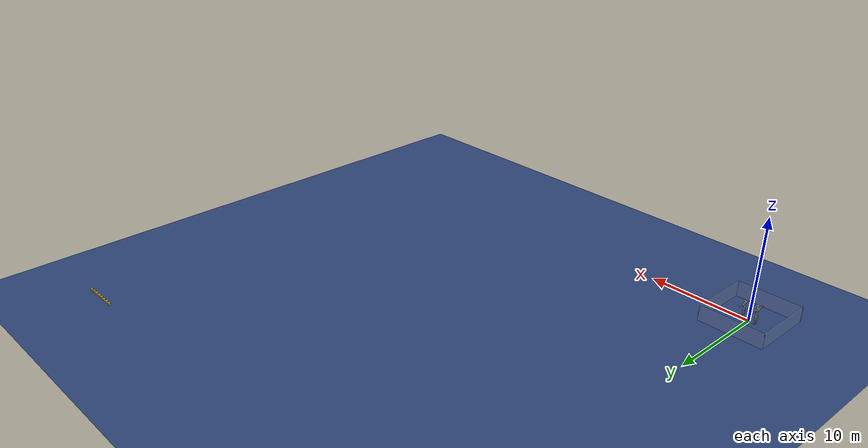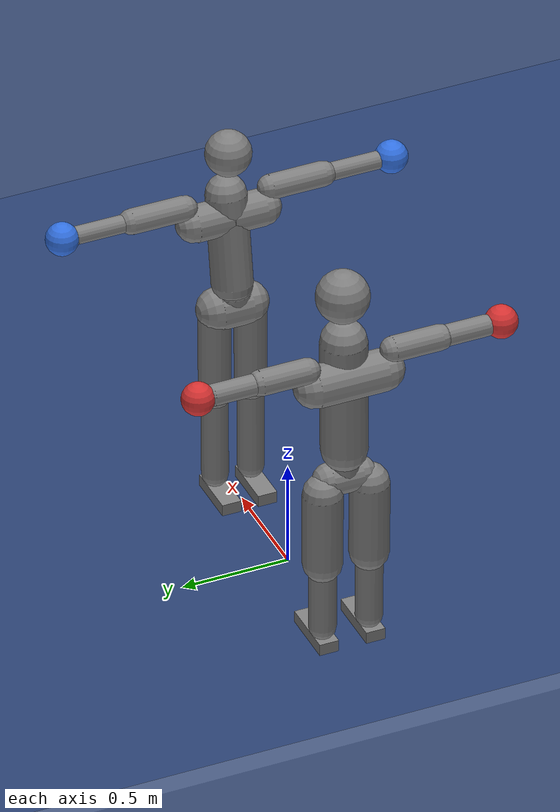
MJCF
<mujoco model="trump_vs_matt_spar">
  <compiler angle="degree" inertiafromgeom="true" autolimits="true"/>
  <option timestep="0.005" iterations="10" ls_iterations="10" integrator="implicitfast">
    <flag eulerdamp="disable"/>
  </option>
  <default>
    <geom contype="1" conaffinity="1" condim="3" friction="1.0 0.005 0.0001" density="1000" margin="0"/>
    <joint limited="true"/>
    <position ctrllimited="true"/>
  </default>
  <asset>
    <texture name="grid" type="2d" builtin="checker" rgb1=".18 .28 .48" rgb2=".14 .22 .40" width="300" height="300"/>
    <material name="grid" texture="grid" texrepeat="6 6" reflectance="0"/>
  </asset>
  <worldbody>
    <light pos="0 0 5" dir="0 0 -1" directional="true"/>
    <geom name="floor" type="plane" size="0 0 0.05" material="grid" friction="1.0 0.005 0.0001"/>
    <geom name="rope_n" type="box" pos="0.0000 3.1000 0.7500" size="3.1500 0.0500 0.7500" rgba="0.8 0.8 0.8 0.15"/>
    <geom name="rope_s" type="box" pos="0.0000 -3.1000 0.7500" size="3.1500 0.0500 0.7500" rgba="0.8 0.8 0.8 0.15"/>
    <geom name="rope_e" type="box" pos="3.1000 0.0000 0.7500" size="0.0500 3.1500 0.7500" rgba="0.8 0.8 0.8 0.15"/>
    <geom name="rope_w" type="box" pos="-3.1000 0.0000 0.7500" size="0.0500 3.1500 0.7500" rgba="0.8 0.8 0.8 0.15"/>
    <body name="a_pelvis" pos="-0.6000 0.0000 0.8500" quat="1.00000 0 0 0.00000">
      <freejoint name="a_root"/>
      <geom name="a_pelvis_geom" type="capsule" fromto="0.0000 -0.0700 0.0000 0.0000 0.0700 0.0000" size="0.0759" mass="9.1798" />
      <geom name="a_pelvis_up" type="capsule" fromto="0.0000 0.0000 0.0000 0.0000 0.0000 0.1100" size="0.0683" mass="6.1988" />
      <body name="a_torso" pos="0.0000 0.0000 0.1300">
        <joint name="a_abdomen_z" type="hinge" axis="0 0 1" range="-45 45" damping="0.5" armature="0.08" stiffness="0"/>
        <joint name="a_abdomen_y" type="hinge" axis="0 1 0" range="-60 30" damping="0.5" armature="0.08" stiffness="0"/>
        <joint name="a_abdomen_x" type="hinge" axis="1 0 0" range="-35 35" damping="0.5" armature="0.08" stiffness="0"/>
        <geom name="a_torso_geom" type="capsule" fromto="0.0000 0.0000 0.0200 0.0100 0.0000 0.5700" size="0.1054" mass="38.4465" />
        <geom name="a_chest_geom" type="capsule" fromto="-0.0480 -0.1600 0.4160 -0.0480 0.1600 0.4160" size="0.0949" mass="0.5"/>
        <geom name="a_head_geom" type="sphere" pos="0.0200 0.0000 0.8000" size="0.1200" mass="8.7723" />
        <body name="a_upper_arm_l" pos="-0.0600 0.2000 0.5200">
          <joint name="a_shoulder_x_l" type="hinge" axis="1 0 0" range="-170 30" damping="0.5" armature="0.03" stiffness="0"/>
          <joint name="a_shoulder_z_l" type="hinge" axis="0 0 1" range="-110 110" damping="0.5" armature="0.03" stiffness="0"/>
          <geom name="a_upper_arm_l_geom" type="capsule" fromto="0.0000 0.0000 0.0000 0.0000 0.2200 0.0000" size="0.0580" mass="3.0324" />
          <body name="a_forearm_l" pos="0.0000 0.2200 0.0000">
            <joint name="a_elbow_l" type="hinge" axis="0 0 1" range="-150 0" damping="0.5" armature="0.02" stiffness="0"/>
            <geom name="a_forearm_l_geom" type="capsule" fromto="0.0000 0.0000 0.0000 0.0000 0.2202 0.0000" size="0.0480" mass="1.7328" />
            <geom name="a_glove_l" type="sphere" pos="0.0000 0.2877 0.0000" size="0.0750" mass="0.9328" rgba="0.85 0.2 0.2 1"/>
          </body>
        </body>
        <body name="a_upper_arm_r" pos="-0.0600 -0.2000 0.5200">
          <joint name="a_shoulder_x_r" type="hinge" axis="1 0 0" range="-30 170" damping="0.5" armature="0.03" stiffness="0"/>
          <joint name="a_shoulder_z_r" type="hinge" axis="0 0 1" range="-110 110" damping="0.5" armature="0.03" stiffness="0"/>
          <geom name="a_upper_arm_r_geom" type="capsule" fromto="0.0000 0.0000 0.0000 0.0000 -0.2200 0.0000" size="0.0580" mass="3.0324" />
          <body name="a_forearm_r" pos="0.0000 -0.2200 0.0000">
            <joint name="a_elbow_r" type="hinge" axis="0 0 1" range="0 150" damping="0.5" armature="0.02" stiffness="0"/>
            <geom name="a_forearm_r_geom" type="capsule" fromto="0.0000 0.0000 0.0000 0.0000 -0.2202 0.0000" size="0.0480" mass="1.7328" />
            <geom name="a_glove_r" type="sphere" pos="0.0000 -0.2877 0.0000" size="0.0750" mass="0.9328" rgba="0.85 0.2 0.2 1"/>
          </body>
        </body>
      </body>
      <body name="a_thigh_l" pos="-0.0200 0.1100 -0.0500">
        <joint name="a_hip_x_l" type="hinge" axis="1 0 0" range="-40 40" damping="0.5" armature="0.1" stiffness="0"/>
        <joint name="a_hip_z_l" type="hinge" axis="0 0 1" range="-35 35" damping="0.5" armature="0.1" stiffness="0"/>
        <joint name="a_hip_y_l" type="hinge" axis="0 1 0" range="-120 30" damping="0.5" armature="0.1" stiffness="0"/>
        <geom name="a_thigh_l_geom" type="capsule" fromto="0.0000 0.0000 0.0000 0.0000 0.0000 -0.3618" size="0.0900" mass="10.8300" />
        <body name="a_shin_l" pos="0.0000 0.0000 -0.3618">
          <joint name="a_knee_l" type="hinge" axis="0 1 0" range="0 150" damping="0.5" armature="0.1" stiffness="0"/>
          <geom name="a_shin_l_geom" type="capsule" fromto="0.0000 0.0000 0.0000 0.0000 0.0000 -0.3404" size="0.0620" mass="5.0359" />
          <body name="a_foot_l" pos="0.0000 0.0000 -0.3404">
            <joint name="a_ankle_y_l" type="hinge" axis="0 1 0" range="-20 50" damping="0.5" armature="0.03" stiffness="0"/>
            <joint name="a_ankle_x_l" type="hinge" axis="1 0 0" range="-25 25" damping="0.5" armature="0.03" stiffness="0"/>
            <geom name="a_foot_l_geom" type="box" pos="0.0624 0.0000 -0.0720" size="0.1358 0.0450 0.0280" mass="1.5704" friction="1.0 0.005 0.0001"/>
            <site name="a_foot_l_site" pos="0.0624 0.0000 -0.0720" size="0.01"/>
          </body>
        </body>
      </body>
      <body name="a_thigh_r" pos="-0.0200 -0.1100 -0.0500">
        <joint name="a_hip_x_r" type="hinge" axis="1 0 0" range="-40 40" damping="0.5" armature="0.1" stiffness="0"/>
        <joint name="a_hip_z_r" type="hinge" axis="0 0 1" range="-35 35" damping="0.5" armature="0.1" stiffness="0"/>
        <joint name="a_hip_y_r" type="hinge" axis="0 1 0" range="-120 30" damping="0.5" armature="0.1" stiffness="0"/>
        <geom name="a_thigh_r_geom" type="capsule" fromto="0.0000 0.0000 0.0000 0.0000 0.0000 -0.3618" size="0.0900" mass="10.8300" />
        <body name="a_shin_r" pos="0.0000 0.0000 -0.3618">
          <joint name="a_knee_r" type="hinge" axis="0 1 0" range="0 150" damping="0.5" armature="0.1" stiffness="0"/>
          <geom name="a_shin_r_geom" type="capsule" fromto="0.0000 0.0000 0.0000 0.0000 0.0000 -0.3404" size="0.0620" mass="5.0359" />
          <body name="a_foot_r" pos="0.0000 0.0000 -0.3404">
            <joint name="a_ankle_y_r" type="hinge" axis="0 1 0" range="-20 50" damping="0.5" armature="0.03" stiffness="0"/>
            <joint name="a_ankle_x_r" type="hinge" axis="1 0 0" range="-25 25" damping="0.5" armature="0.03" stiffness="0"/>
            <geom name="a_foot_r_geom" type="box" pos="0.0624 0.0000 -0.0720" size="0.1358 0.0450 0.0280" mass="1.5704" friction="1.0 0.005 0.0001"/>
            <site name="a_foot_r_site" pos="0.0624 0.0000 -0.0720" size="0.01"/>
          </body>
        </body>
      </body>
    </body>
    <body name="b_pelvis" pos="0.6000 0.0000 0.9733" quat="0.00000 0 0 1.00000">
      <freejoint name="b_root"/>
      <geom name="b_pelvis_geom" type="capsule" fromto="0.0000 -0.0700 0.0000 0.0000 0.0700 0.0000" size="0.0976" mass="7.5566" />
      <geom name="b_pelvis_up" type="capsule" fromto="0.0000 0.0000 0.0000 -0.0008 0.0000 0.0758" size="0.0878" mass="4.3714" />
      <body name="b_torso" pos="-0.0008 0.0000 0.0958">
        <joint name="b_abdomen_z" type="hinge" axis="0 0 1" range="-45 45" damping="0.5" armature="0.08" stiffness="0"/>
        <joint name="b_abdomen_y" type="hinge" axis="0 1 0" range="-60 30" damping="0.5" armature="0.08" stiffness="0"/>
        <joint name="b_abdomen_x" type="hinge" axis="1 0 0" range="-35 35" damping="0.5" armature="0.08" stiffness="0"/>
        <geom name="b_torso_geom" type="capsule" fromto="0.0000 0.0000 0.0200 -0.0653 -0.0000 0.4511" size="0.0937" mass="29.8200" />
        <geom name="b_chest_geom" type="capsule" fromto="-0.0402 -0.1614 0.3530 -0.0402 0.1614 0.3530" size="0.0843" mass="0.5"/>
        <geom name="b_head_geom" type="sphere" pos="-0.0385 -0.0000 0.6830" size="0.1049" mass="6.8040" />
        <body name="b_upper_arm_l" pos="-0.0503 0.2018 0.4412">
          <joint name="b_shoulder_x_l" type="hinge" axis="1 0 0" range="-170 30" damping="0.5" armature="0.03" stiffness="0"/>
          <joint name="b_shoulder_z_l" type="hinge" axis="0 0 1" range="-110 110" damping="0.5" armature="0.03" stiffness="0"/>
          <geom name="b_upper_arm_l_geom" type="capsule" fromto="0.0000 0.0000 0.0000 0.0000 0.2524 0.0000" size="0.0571" mass="2.3520" />
          <body name="b_forearm_l" pos="0.0000 0.2524 0.0000">
            <joint name="b_elbow_l" type="hinge" axis="0 0 1" range="-150 0" damping="0.5" armature="0.02" stiffness="0"/>
            <geom name="b_forearm_l_geom" type="capsule" fromto="0.0000 0.0000 0.0000 0.0000 0.2567 0.0000" size="0.0408" mass="1.3440" />
            <geom name="b_glove_l" type="sphere" pos="0.0000 0.3242 0.0000" size="0.0750" mass="0.7870" rgba="0.2 0.45 0.9 1"/>
          </body>
        </body>
        <body name="b_upper_arm_r" pos="-0.0503 -0.2018 0.4412">
          <joint name="b_shoulder_x_r" type="hinge" axis="1 0 0" range="-30 170" damping="0.5" armature="0.03" stiffness="0"/>
          <joint name="b_shoulder_z_r" type="hinge" axis="0 0 1" range="-110 110" damping="0.5" armature="0.03" stiffness="0"/>
          <geom name="b_upper_arm_r_geom" type="capsule" fromto="0.0000 0.0000 0.0000 0.0000 -0.2524 0.0000" size="0.0571" mass="2.3520" />
          <body name="b_forearm_r" pos="0.0000 -0.2524 0.0000">
            <joint name="b_elbow_r" type="hinge" axis="0 0 1" range="0 150" damping="0.5" armature="0.02" stiffness="0"/>
            <geom name="b_forearm_r_geom" type="capsule" fromto="0.0000 0.0000 0.0000 0.0000 -0.2567 0.0000" size="0.0408" mass="1.3440" />
            <geom name="b_glove_r" type="sphere" pos="0.0000 -0.3242 0.0000" size="0.0750" mass="0.7870" rgba="0.2 0.45 0.9 1"/>
          </body>
        </body>
      </body>
      <body name="b_thigh_l" pos="0.0008 0.0857 -0.0302">
        <joint name="b_hip_x_l" type="hinge" axis="1 0 0" range="-40 40" damping="0.5" armature="0.1" stiffness="0"/>
        <joint name="b_hip_z_l" type="hinge" axis="0 0 1" range="-35 35" damping="0.5" armature="0.1" stiffness="0"/>
        <joint name="b_hip_y_l" type="hinge" axis="0 1 0" range="-120 30" damping="0.5" armature="0.1" stiffness="0"/>
        <geom name="b_thigh_l_geom" type="capsule" fromto="0.0000 0.0000 0.0000 0.0000 0.0000 -0.4154" size="0.0737" mass="8.4000" />
        <body name="b_shin_l" pos="0.0000 0.0000 -0.4154">
          <joint name="b_knee_l" type="hinge" axis="0 1 0" range="0 150" damping="0.5" armature="0.1" stiffness="0"/>
          <geom name="b_shin_l_geom" type="capsule" fromto="0.0000 0.0000 0.0000 0.0000 0.0000 -0.4309" size="0.0608" mass="3.9060" />
          <body name="b_foot_l" pos="0.0000 0.0000 -0.4309">
            <joint name="b_ankle_y_l" type="hinge" axis="0 1 0" range="-20 50" damping="0.5" armature="0.03" stiffness="0"/>
            <joint name="b_ankle_x_l" type="hinge" axis="1 0 0" range="-25 25" damping="0.5" armature="0.03" stiffness="0"/>
            <geom name="b_foot_l_geom" type="box" pos="0.0581 0.0000 -0.0700" size="0.1262 0.0450 0.0280" mass="1.2180" friction="1.0 0.005 0.0001"/>
            <site name="b_foot_l_site" pos="0.0581 0.0000 -0.0700" size="0.01"/>
          </body>
        </body>
      </body>
      <body name="b_thigh_r" pos="0.0008 -0.0857 -0.0302">
        <joint name="b_hip_x_r" type="hinge" axis="1 0 0" range="-40 40" damping="0.5" armature="0.1" stiffness="0"/>
        <joint name="b_hip_z_r" type="hinge" axis="0 0 1" range="-35 35" damping="0.5" armature="0.1" stiffness="0"/>
        <joint name="b_hip_y_r" type="hinge" axis="0 1 0" range="-120 30" damping="0.5" armature="0.1" stiffness="0"/>
        <geom name="b_thigh_r_geom" type="capsule" fromto="0.0000 0.0000 0.0000 0.0000 0.0000 -0.4154" size="0.0737" mass="8.4000" />
        <body name="b_shin_r" pos="0.0000 0.0000 -0.4154">
          <joint name="b_knee_r" type="hinge" axis="0 1 0" range="0 150" damping="0.5" armature="0.1" stiffness="0"/>
          <geom name="b_shin_r_geom" type="capsule" fromto="0.0000 0.0000 0.0000 0.0000 0.0000 -0.4309" size="0.0608" mass="3.9060" />
          <body name="b_foot_r" pos="0.0000 0.0000 -0.4309">
            <joint name="b_ankle_y_r" type="hinge" axis="0 1 0" range="-20 50" damping="0.5" armature="0.03" stiffness="0"/>
            <joint name="b_ankle_x_r" type="hinge" axis="1 0 0" range="-25 25" damping="0.5" armature="0.03" stiffness="0"/>
            <geom name="b_foot_r_geom" type="box" pos="0.0581 0.0000 -0.0700" size="0.1262 0.0450 0.0280" mass="1.2180" friction="1.0 0.005 0.0001"/>
            <site name="b_foot_r_site" pos="0.0581 0.0000 -0.0700" size="0.01"/>
          </body>
        </body>
      </body>
    </body>
    <body name="cube_0" pos="40.0000 40.0000 0.3000"><freejoint name="cube_0"/><geom name="cube_0_geom" type="box" size="0.1 0.1 0.1" mass="1.0" rgba="0.9 0.7 0.2 1"/></body>
    <body name="cube_1" pos="40.5000 40.0000 0.3000"><freejoint name="cube_1"/><geom name="cube_1_geom" type="box" size="0.1 0.1 0.1" mass="1.0" rgba="0.9 0.7 0.2 1"/></body>
    <body name="cube_2" pos="41.0000 40.0000 0.3000"><freejoint name="cube_2"/><geom name="cube_2_geom" type="box" size="0.1 0.1 0.1" mass="1.0" rgba="0.9 0.7 0.2 1"/></body>
    <body name="cube_3" pos="41.5000 40.0000 0.3000"><freejoint name="cube_3"/><geom name="cube_3_geom" type="box" size="0.1 0.1 0.1" mass="1.0" rgba="0.9 0.7 0.2 1"/></body>
    <body name="cube_4" pos="42.0000 40.0000 0.3000"><freejoint name="cube_4"/><geom name="cube_4_geom" type="box" size="0.1 0.1 0.1" mass="1.0" rgba="0.9 0.7 0.2 1"/></body>
    <body name="cube_5" pos="42.5000 40.0000 0.3000"><freejoint name="cube_5"/><geom name="cube_5_geom" type="box" size="0.1 0.1 0.1" mass="1.0" rgba="0.9 0.7 0.2 1"/></body>
    <body name="cube_6" pos="43.0000 40.0000 0.3000"><freejoint name="cube_6"/><geom name="cube_6_geom" type="box" size="0.1 0.1 0.1" mass="1.0" rgba="0.9 0.7 0.2 1"/></body>
    <body name="cube_7" pos="43.5000 40.0000 0.3000"><freejoint name="cube_7"/><geom name="cube_7_geom" type="box" size="0.1 0.1 0.1" mass="1.0" rgba="0.9 0.7 0.2 1"/></body>
  </worldbody>
  <contact>
    <exclude body1="a_pelvis" body2="a_torso"/>
    <exclude body1="a_pelvis" body2="a_thigh_l"/>
    <exclude body1="a_thigh_l" body2="a_shin_l"/>
    <exclude body1="a_shin_l" body2="a_foot_l"/>
    <exclude body1="a_torso" body2="a_upper_arm_l"/>
    <exclude body1="a_upper_arm_l" body2="a_forearm_l"/>
    <exclude body1="a_pelvis" body2="a_thigh_r"/>
    <exclude body1="a_thigh_r" body2="a_shin_r"/>
    <exclude body1="a_shin_r" body2="a_foot_r"/>
    <exclude body1="a_torso" body2="a_upper_arm_r"/>
    <exclude body1="a_upper_arm_r" body2="a_forearm_r"/>
    <exclude body1="b_pelvis" body2="b_torso"/>
    <exclude body1="b_pelvis" body2="b_thigh_l"/>
    <exclude body1="b_thigh_l" body2="b_shin_l"/>
    <exclude body1="b_shin_l" body2="b_foot_l"/>
    <exclude body1="b_torso" body2="b_upper_arm_l"/>
    <exclude body1="b_upper_arm_l" body2="b_forearm_l"/>
    <exclude body1="b_pelvis" body2="b_thigh_r"/>
    <exclude body1="b_thigh_r" body2="b_shin_r"/>
    <exclude body1="b_shin_r" body2="b_foot_r"/>
    <exclude body1="b_torso" body2="b_upper_arm_r"/>
    <exclude body1="b_upper_arm_r" body2="b_forearm_r"/>
  </contact>
  <actuator>
    <position name="a_abdomen_z" joint="a_abdomen_z" kp="495.9" kv="23.142" forcerange="-187.34 187.34" ctrlrange="-0.7854 0.7854"/>
    <position name="a_abdomen_y" joint="a_abdomen_y" kp="495.9" kv="23.142" forcerange="-187.34 187.34" ctrlrange="-1.0472 0.5236"/>
    <position name="a_abdomen_x" joint="a_abdomen_x" kp="495.9" kv="23.142" forcerange="-187.34 187.34" ctrlrange="-0.6109 0.6109"/>
    <position name="a_shoulder_x_l" joint="a_shoulder_x_l" kp="176.32" kv="8.816" forcerange="-110.2 110.2" ctrlrange="-2.9671 0.5236"/>
    <position name="a_shoulder_z_l" joint="a_shoulder_z_l" kp="176.32" kv="8.816" forcerange="-110.2 110.2" ctrlrange="-1.9199 1.9199"/>
    <position name="a_elbow_l" joint="a_elbow_l" kp="121.22" kv="6.061" forcerange="-77.14 77.14" ctrlrange="-2.6180 0.0000"/>
    <position name="a_shoulder_x_r" joint="a_shoulder_x_r" kp="176.32" kv="8.816" forcerange="-110.2 110.2" ctrlrange="-0.5236 2.9671"/>
    <position name="a_shoulder_z_r" joint="a_shoulder_z_r" kp="176.32" kv="8.816" forcerange="-110.2 110.2" ctrlrange="-1.9199 1.9199"/>
    <position name="a_elbow_r" joint="a_elbow_r" kp="121.22" kv="6.061" forcerange="-77.14 77.14" ctrlrange="0.0000 2.6180"/>
    <position name="a_hip_x_l" joint="a_hip_x_l" kp="661.2" kv="33.06" forcerange="-264.48 264.48" ctrlrange="-0.6981 0.6981"/>
    <position name="a_hip_z_l" joint="a_hip_z_l" kp="661.2" kv="33.06" forcerange="-264.48 264.48" ctrlrange="-0.6109 0.6109"/>
    <position name="a_hip_y_l" joint="a_hip_y_l" kp="661.2" kv="33.06" forcerange="-264.48 264.48" ctrlrange="-2.0944 0.5236"/>
    <position name="a_knee_l" joint="a_knee_l" kp="661.2" kv="33.06" forcerange="-286.52 286.52" ctrlrange="0.0000 2.6180"/>
    <position name="a_ankle_y_l" joint="a_ankle_y_l" kp="826.5" kv="33.06" forcerange="-242.44 242.44" ctrlrange="-0.3491 0.8727"/>
    <position name="a_ankle_x_l" joint="a_ankle_x_l" kp="88.16" kv="4.408" forcerange="-66.12 66.12" ctrlrange="-0.4363 0.4363"/>
    <position name="a_hip_x_r" joint="a_hip_x_r" kp="661.2" kv="33.06" forcerange="-264.48 264.48" ctrlrange="-0.6981 0.6981"/>
    <position name="a_hip_z_r" joint="a_hip_z_r" kp="661.2" kv="33.06" forcerange="-264.48 264.48" ctrlrange="-0.6109 0.6109"/>
    <position name="a_hip_y_r" joint="a_hip_y_r" kp="661.2" kv="33.06" forcerange="-264.48 264.48" ctrlrange="-2.0944 0.5236"/>
    <position name="a_knee_r" joint="a_knee_r" kp="661.2" kv="33.06" forcerange="-286.52 286.52" ctrlrange="0.0000 2.6180"/>
    <position name="a_ankle_y_r" joint="a_ankle_y_r" kp="826.5" kv="33.06" forcerange="-242.44 242.44" ctrlrange="-0.3491 0.8727"/>
    <position name="a_ankle_x_r" joint="a_ankle_x_r" kp="88.16" kv="4.408" forcerange="-66.12 66.12" ctrlrange="-0.4363 0.4363"/>
    <position name="b_abdomen_z" joint="b_abdomen_z" kp="473.85" kv="22.113" forcerange="-179.01 179.01" ctrlrange="-0.7854 0.7854"/>
    <position name="b_abdomen_y" joint="b_abdomen_y" kp="473.85" kv="22.113" forcerange="-179.01 179.01" ctrlrange="-1.0472 0.5236"/>
    <position name="b_abdomen_x" joint="b_abdomen_x" kp="473.85" kv="22.113" forcerange="-179.01 179.01" ctrlrange="-0.6109 0.6109"/>
    <position name="b_shoulder_x_l" joint="b_shoulder_x_l" kp="168.48" kv="8.424" forcerange="-105.3 105.3" ctrlrange="-2.9671 0.5236"/>
    <position name="b_shoulder_z_l" joint="b_shoulder_z_l" kp="168.48" kv="8.424" forcerange="-105.3 105.3" ctrlrange="-1.9199 1.9199"/>
    <position name="b_elbow_l" joint="b_elbow_l" kp="115.83" kv="5.791" forcerange="-73.71 73.71" ctrlrange="-2.6180 0.0000"/>
    <position name="b_shoulder_x_r" joint="b_shoulder_x_r" kp="168.48" kv="8.424" forcerange="-105.3 105.3" ctrlrange="-0.5236 2.9671"/>
    <position name="b_shoulder_z_r" joint="b_shoulder_z_r" kp="168.48" kv="8.424" forcerange="-105.3 105.3" ctrlrange="-1.9199 1.9199"/>
    <position name="b_elbow_r" joint="b_elbow_r" kp="115.83" kv="5.791" forcerange="-73.71 73.71" ctrlrange="0.0000 2.6180"/>
    <position name="b_hip_x_l" joint="b_hip_x_l" kp="631.8" kv="31.59" forcerange="-252.72 252.72" ctrlrange="-0.6981 0.6981"/>
    <position name="b_hip_z_l" joint="b_hip_z_l" kp="631.8" kv="31.59" forcerange="-252.72 252.72" ctrlrange="-0.6109 0.6109"/>
    <position name="b_hip_y_l" joint="b_hip_y_l" kp="631.8" kv="31.59" forcerange="-252.72 252.72" ctrlrange="-2.0944 0.5236"/>
    <position name="b_knee_l" joint="b_knee_l" kp="631.8" kv="31.59" forcerange="-273.78 273.78" ctrlrange="0.0000 2.6180"/>
    <position name="b_ankle_y_l" joint="b_ankle_y_l" kp="789.75" kv="31.59" forcerange="-231.66 231.66" ctrlrange="-0.3491 0.8727"/>
    <position name="b_ankle_x_l" joint="b_ankle_x_l" kp="84.24" kv="4.212" forcerange="-63.18 63.18" ctrlrange="-0.4363 0.4363"/>
    <position name="b_hip_x_r" joint="b_hip_x_r" kp="631.8" kv="31.59" forcerange="-252.72 252.72" ctrlrange="-0.6981 0.6981"/>
    <position name="b_hip_z_r" joint="b_hip_z_r" kp="631.8" kv="31.59" forcerange="-252.72 252.72" ctrlrange="-0.6109 0.6109"/>
    <position name="b_hip_y_r" joint="b_hip_y_r" kp="631.8" kv="31.59" forcerange="-252.72 252.72" ctrlrange="-2.0944 0.5236"/>
    <position name="b_knee_r" joint="b_knee_r" kp="631.8" kv="31.59" forcerange="-273.78 273.78" ctrlrange="0.0000 2.6180"/>
    <position name="b_ankle_y_r" joint="b_ankle_y_r" kp="789.75" kv="31.59" forcerange="-231.66 231.66" ctrlrange="-0.3491 0.8727"/>
    <position name="b_ankle_x_r" joint="b_ankle_x_r" kp="84.24" kv="4.212" forcerange="-63.18 63.18" ctrlrange="-0.4363 0.4363"/>
  </actuator>
  <keyframe>
    <key name="stand" qpos="-0.6000 0.0000 0.8360 1.00000 0 0 0.00000 0.0000 0.0000 0.0000 -1.3265 -0.7330 -1.9548 1.3265 0.7330 1.9548 0.0000 0.0000 -0.1932 0.4538 -0.2606 0.0000 0.0000 0.0000 -0.1932 0.4538 -0.2606 0.0000 0.6000 0.0000 0.9536 0.00000 0 0 1.00000 0.0000 0.0000 0.0000 -1.3265 -0.7330 -1.9548 1.3265 0.7330 1.9548 0.0000 0.0000 -0.1763 0.4538 -0.2775 0.0000 0.0000 0.0000 -0.1763 0.4538 -0.2775 0.0000 40.0000 40.0000 0.3000 1 0 0 0 40.5000 40.0000 0.3000 1 0 0 0 41.0000 40.0000 0.3000 1 0 0 0 41.5000 40.0000 0.3000 1 0 0 0 42.0000 40.0000 0.3000 1 0 0 0 42.5000 40.0000 0.3000 1 0 0 0 43.0000 40.0000 0.3000 1 0 0 0 43.5000 40.0000 0.3000 1 0 0 0"/>
  </keyframe>
</mujoco>
